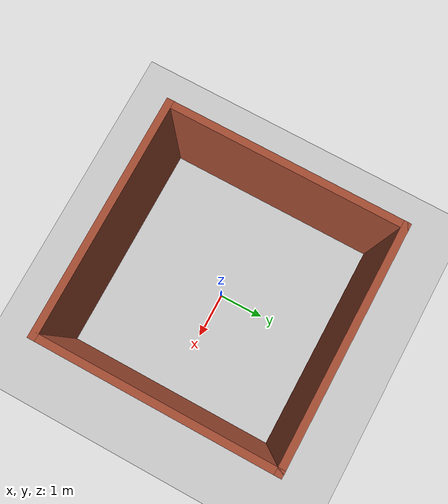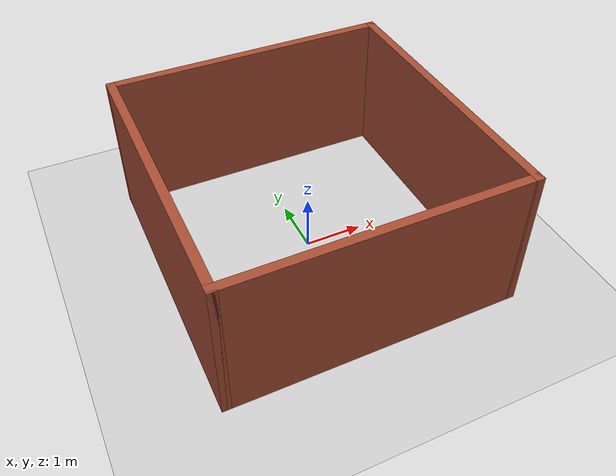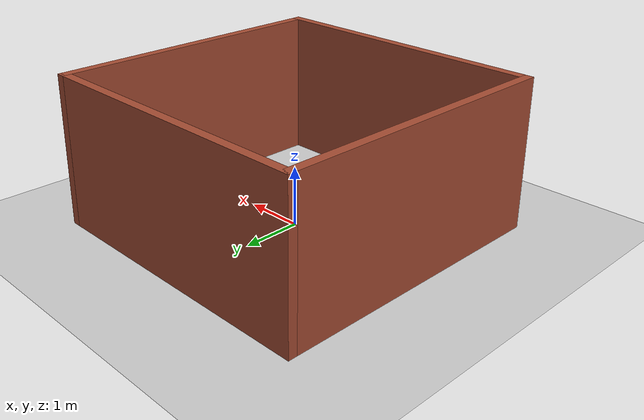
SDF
<sdf version="1.7">
 <world name="default">
  <model name="ground_plane">
   <static>1</static>
   <link name="link">
    <collision name="collision">
     <geometry><plane><normal>0 0 1</normal><size>100 100</size></plane></geometry>
     <surface>
      <contact><collide_bitmask>65535</collide_bitmask></contact>
      <friction><ode><mu>100</mu><mu2>50</mu2></ode></friction>
     </surface>
    </collision>
    <visual name="visual">
     <cast_shadows>0</cast_shadows>
     <geometry><plane><normal>0 0 1</normal><size>100 100</size></plane></geometry>
     <material>
      <script><uri>file://media/materials/scripts/gazebo.material</uri><name>Gazebo/Grey</name></script>
     </material>
    </visual>
   </link>
  </model>
  <gravity>0 0 -9.8</gravity>
  <magnetic_field>6e-06 2.3e-05 -4.2e-05</magnetic_field>
  <atmosphere type="adiabatic"/>
  <physics type="ode">
   <max_step_size>0.001</max_step_size>
   <real_time_factor>1</real_time_factor>
   <real_time_update_rate>1000</real_time_update_rate>
  </physics>
  <scene><ambient>0.4 0.4 0.4 1</ambient><background>0.7 0.7 0.7 1</background><shadows>1</shadows></scene>
  <spherical_coordinates>
   <surface_model>EARTH_WGS84</surface_model>
   <latitude_deg>0</latitude_deg>
   <longitude_deg>0</longitude_deg>
   <elevation>0</elevation>
   <heading_deg>0</heading_deg>
  </spherical_coordinates>
  <model name="world">
   <pose>0 0.553181 0 0 -0 0</pose>
   <link name="Wall_0">
    <collision name="Wall_0_Collision">
     <geometry><box><size>5 0.15 2.5</size></box></geometry>
     <pose>0 0 1.25 0 -0 0</pose>
    </collision>
    <visual name="Wall_0_Visual">
     <pose>0 0 1.25 0 -0 0</pose>
     <geometry><box><size>5 0.15 2.5</size></box></geometry>
     <material>
      <script><uri>file://media/materials/scripts/gazebo.material</uri><name>Gazebo/Bricks</name></script>
      <ambient>1 1 1 1</ambient>
     </material>
     <meta><layer>0</layer></meta>
    </visual>
    <pose>0 1.8825 0 0 -0 3.14159</pose>
   </link>
   <link name="Wall_1">
    <collision name="Wall_1_Collision">
     <geometry><box><size>5 0.15 2.5</size></box></geometry>
     <pose>0 0 1.25 0 -0 0</pose>
    </collision>
    <visual name="Wall_1_Visual">
     <pose>0 0 1.25 0 -0 0</pose>
     <geometry><box><size>5 0.15 2.5</size></box></geometry>
     <material>
      <script><uri>file://media/materials/scripts/gazebo.material</uri><name>Gazebo/Bricks</name></script>
      <ambient>1 1 1 1</ambient>
     </material>
     <meta><layer>0</layer></meta>
    </visual>
    <pose>-2.425 -0.5425 0 0 -0 -1.5708</pose>
   </link>
   <link name="Wall_2">
    <collision name="Wall_2_Collision">
     <geometry><box><size>5 0.15 2.5</size></box></geometry>
     <pose>0 0 1.25 0 -0 0</pose>
    </collision>
    <visual name="Wall_2_Visual">
     <pose>0 0 1.25 0 -0 0</pose>
     <geometry><box><size>5 0.15 2.5</size></box></geometry>
     <material>
      <script><uri>file://media/materials/scripts/gazebo.material</uri><name>Gazebo/Bricks</name></script>
      <ambient>1 1 1 1</ambient>
     </material>
     <meta><layer>0</layer></meta>
    </visual>
    <pose>0 -2.9675 0 0 -0 0</pose>
   </link>
   <link name="Wall_3">
    <collision name="Wall_3_Collision">
     <geometry><box><size>5 0.15 2.5</size></box></geometry>
     <pose>0 0 1.25 0 -0 0</pose>
    </collision>
    <visual name="Wall_3_Visual">
     <pose>0 0 1.25 0 -0 0</pose>
     <geometry><box><size>5 0.15 2.5</size></box></geometry>
     <material>
      <script><uri>file://media/materials/scripts/gazebo.material</uri><name>Gazebo/Bricks</name></script>
      <ambient>1 1 1 1</ambient>
     </material>
     <meta><layer>0</layer></meta>
    </visual>
    <pose>2.425 -0.5425 0 0 -0 1.5708</pose>
   </link>
   <static>1</static>
  </model>
  <light name="user_point_light_0" type="point">
   <pose>-1.46922 -3.18091 1 0 -0 0</pose>
   <diffuse>0.5 0.5 0.5 1</diffuse>
   <specular>0.1 0.1 0.1 1</specular>
   <attenuation>
    <range>20</range>
    <constant>0.5</constant>
    <linear>0.01</linear>
    <quadratic>0.001</quadratic>
   </attenuation>
   <cast_shadows>0</cast_shadows>
   <direction>0 0 -1</direction>
  </light>
 </world>
</sdf>
